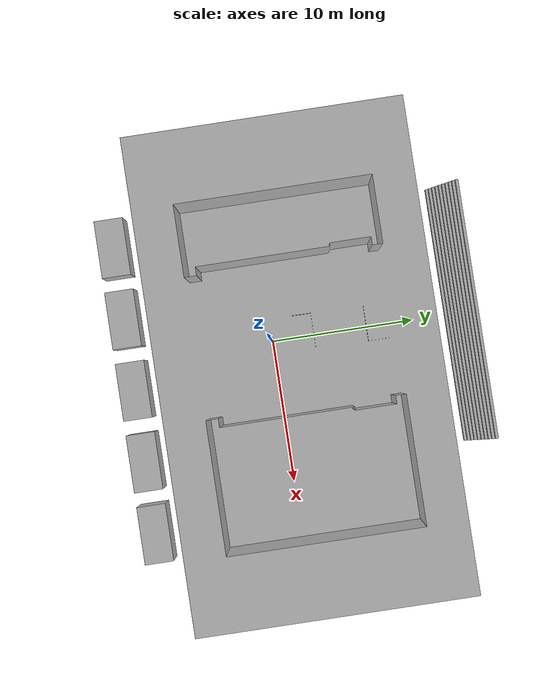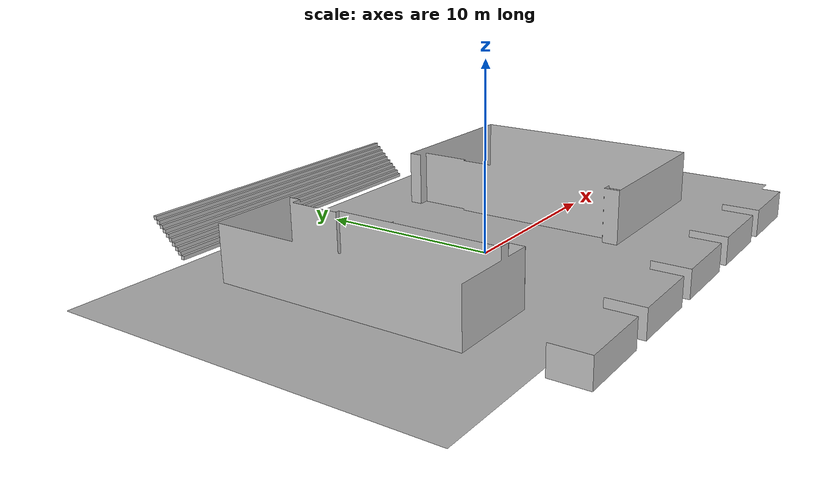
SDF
<?xml version="1.0" ?>
<sdf version="1.4">
  <model name="fme_opened_door">
    <static>true</static>
    <link name="link">
      <pose>0 0 0 0 0 0</pose>
      <collision name="collision">
        <geometry>
          <mesh>
            <uri>model://fme_vertical_laser_test/meshes/fme_vertical_laser_test.stl</uri>
            <scale>1 1 1</scale>
          </mesh>
        </geometry>
      </collision>
      <visual name="visual">
        <geometry>
          <mesh>
            <uri>model://fme_vertical_laser_test/meshes/fme_vertical_laser_test.stl</uri>
            <scale>1 1 1</scale>
          </mesh>
        </geometry>
      </visual>
    </link>
  </model>
</sdf>
